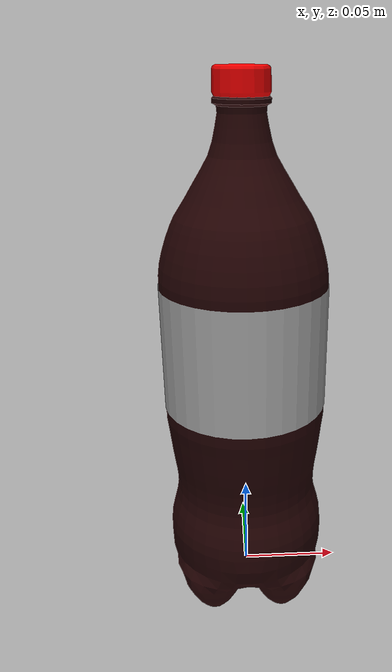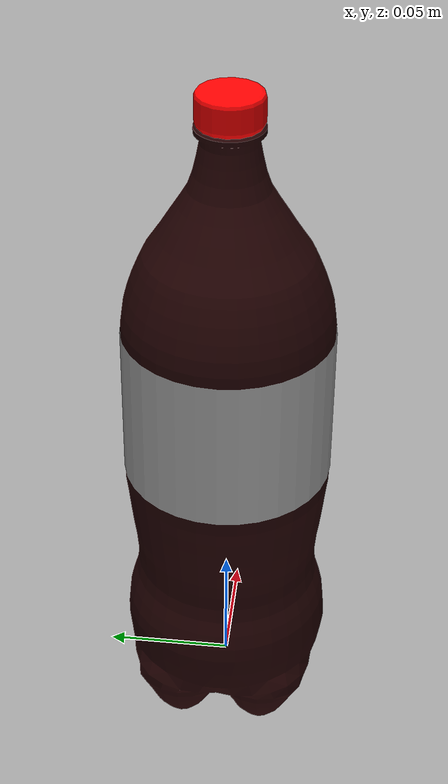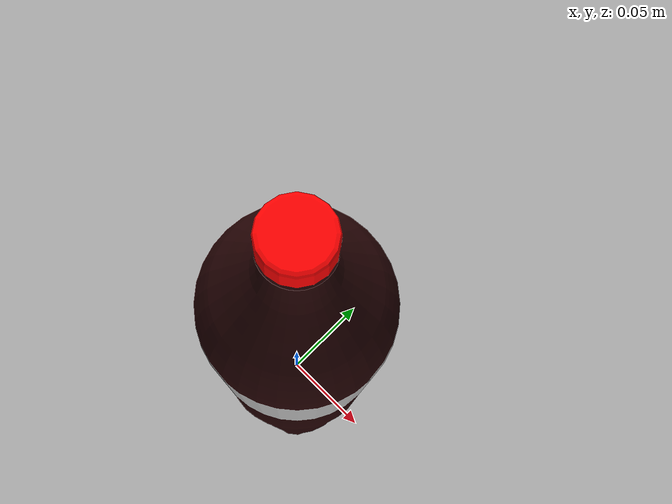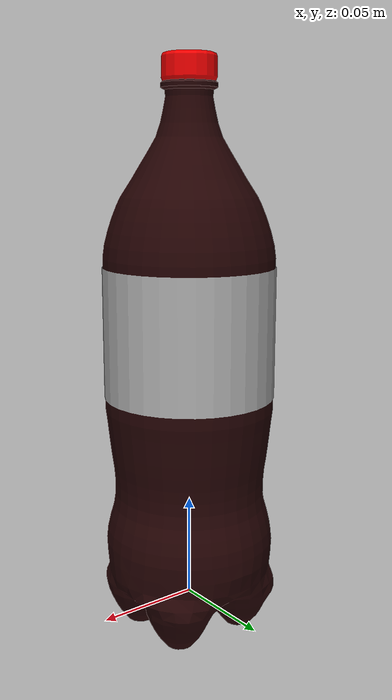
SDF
<?xml version="1.0" ?>
<sdf version="1.5">
  <model name="cola">
    <link name="link">
      <inertial>
        <pose>0 0 0.12 0 0 0</pose>
        <mass>0.56</mass>
        <inertia>
          <ixx>0.0019</ixx>
          <ixy>0</ixy>
          <ixz>0</ixz>
          <iyy>0.0019</iyy>
          <iyz>0</iyz>
          <izz>0.00048</izz>
        </inertia>
      </inertial>

      <collision name="collide">
        <pose>0 0 -0.02 0 0 0</pose>
        <geometry>
          <mesh>
            <uri>model://cola/meshes/cola.dae</uri>
          </mesh>
        </geometry>
      </collision>

      <visual name="visual">
        <pose>0 0 -0.02 0 0 0</pose>
        <geometry>
          <mesh>
            <uri>model://cola/meshes/cola.dae</uri>
          </mesh>
        </geometry>
      </visual>
    </link>
  </model>
</sdf>
